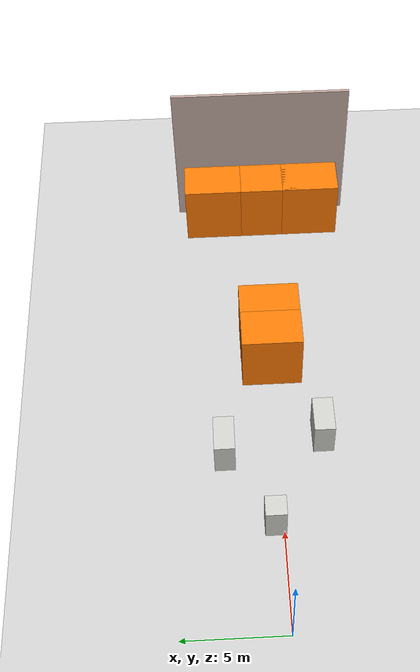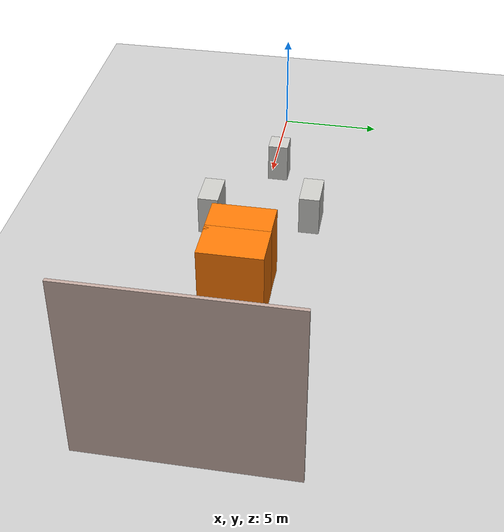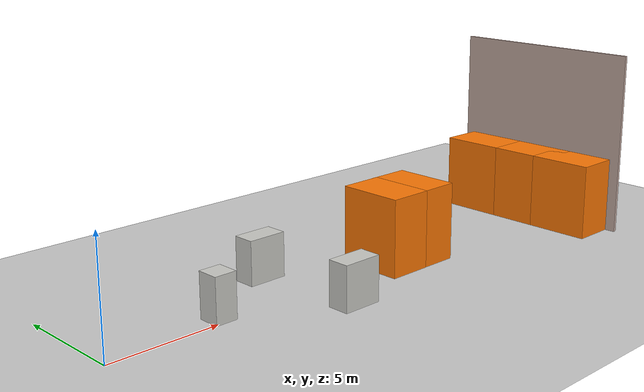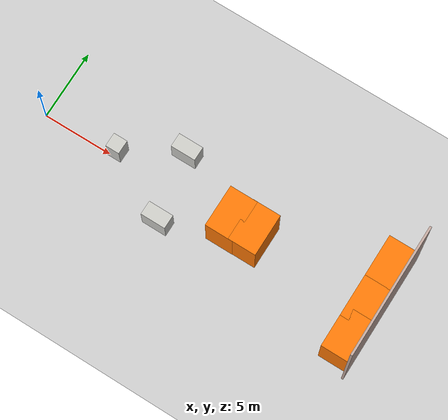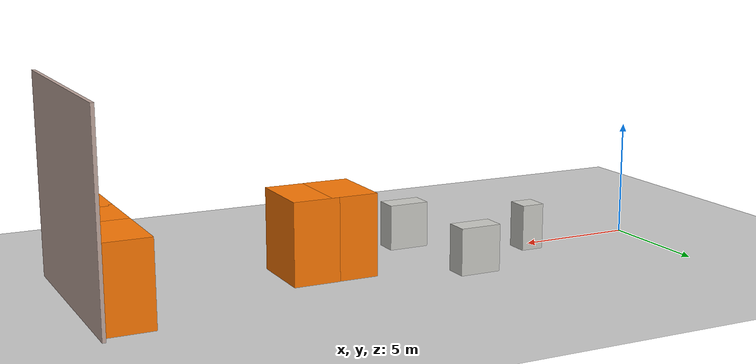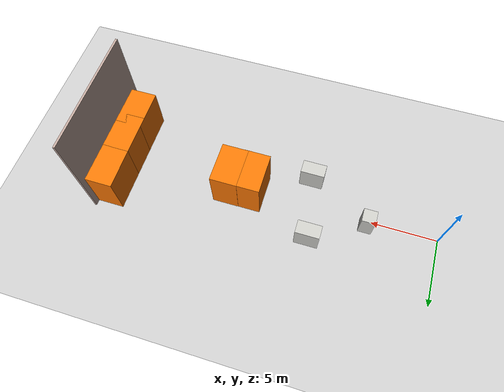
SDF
<sdf version="1.7">
 <world name="default">
  <light name="sun" type="directional">
   <pose>0 0 10 0 -0 0</pose>
   <diffuse>0.8 0.8 0.8 1</diffuse>
   <specular>0.2 0.2 0.2 1</specular>
   <attenuation>
    <range>1000</range>
    <constant>0.9</constant>
    <linear>0.01</linear>
    <quadratic>0.001</quadratic>
   </attenuation>
   <direction>-0.5 0.1 -0.9</direction>
   <spot><inner_angle>0</inner_angle><outer_angle>0</outer_angle><falloff>0</falloff></spot>
  </light>
  <model name="ground_plane">
   <static>1</static>
   <link name="link">
    <collision name="collision">
     <geometry><plane><normal>0 0 1</normal><size>100 100</size></plane></geometry>
     <surface>
      <contact><collide_bitmask>65535</collide_bitmask></contact>
      <friction><ode><mu>100</mu><mu2>50</mu2></ode></friction>
     </surface>
    </collision>
    <visual name="visual">
     <cast_shadows>0</cast_shadows>
     <geometry><plane><normal>0 0 1</normal><size>100 100</size></plane></geometry>
     <material>
      <script><uri>file://media/materials/scripts/gazebo.material</uri><name>Gazebo/Grey</name></script>
     </material>
    </visual>
   </link>
  </model>
  <gravity>0 0 -9.8</gravity>
  <magnetic_field>6e-06 2.3e-05 -4.2e-05</magnetic_field>
  <atmosphere type="adiabatic"/>
  <physics type="ode">
   <max_step_size>0.001</max_step_size>
   <real_time_factor>1</real_time_factor>
   <real_time_update_rate>1000</real_time_update_rate>
  </physics>
  <scene><ambient>0.4 0.4 0.4 1</ambient><background>0.7 0.7 0.7 1</background><shadows>1</shadows></scene>
  <spherical_coordinates>
   <surface_model>EARTH_WGS84</surface_model>
   <latitude_deg>0</latitude_deg>
   <longitude_deg>0</longitude_deg>
   <elevation>0</elevation>
   <heading_deg>0</heading_deg>
  </spherical_coordinates>
  <model name="tunnel_wall">
   <pose>18 0 0 0 -0 0</pose>
   <link name="Wall_0">
    <collision name="Wall_0_Collision">
     <geometry><box><size>9.15 0.15 8.5</size></box></geometry>
     <pose>0 0 4.25 0 -0 0</pose>
    </collision>
    <visual name="Wall_0_Visual">
     <pose>0 0 4.25 0 -0 0</pose>
     <geometry><box><size>9.15 0.15 8.5</size></box></geometry>
     <material>
      <script><uri>file://media/materials/scripts/gazebo.material</uri><name>Gazebo/Grey</name></script>
      <ambient>0.760784 0.662745 0.627451 1</ambient>
     </material>
     <meta><layer>0</layer></meta>
    </visual>
    <pose>7.4625 0 0 0 -0 1.5708</pose>
   </link>
   <static>1</static>
  </model>
  <model name="box3_2_3.5">
   <pose>24.4 2.63486 0 0 -0 0</pose>
   <link name="Wall_7">
    <collision name="Wall_7_Collision">
     <geometry><box><size>3 2 3.5</size></box></geometry>
     <pose>0 0 1.75 0 -0 0</pose>
    </collision>
    <visual name="Wall_7_Visual">
     <pose>0 0 1.75 0 -0 0</pose>
     <geometry><box><size>3 2 3.5</size></box></geometry>
     <material>
      <script><uri>file://media/materials/scripts/gazebo.material</uri><name>Gazebo/Grey</name></script>
      <ambient>0.996078 0.47451 0.0196078 1</ambient>
     </material>
     <meta><layer>0</layer></meta>
    </visual>
    <pose>0 0 0 0 -0 1.5708</pose>
   </link>
   <static>1</static>
  </model>
  <model name="box3_2_3.5_clone">
   <pose>24.4 -0.347109 0 0 -0 0</pose>
   <link name="Wall_7">
    <collision name="Wall_7_Collision">
     <geometry><box><size>3 2 3.5</size></box></geometry>
     <pose>0 0 1.75 0 -0 0</pose>
    </collision>
    <visual name="Wall_7_Visual">
     <pose>0 0 1.75 0 -0 0</pose>
     <geometry><box><size>3 2 3.5</size></box></geometry>
     <material>
      <script><uri>file://media/materials/scripts/gazebo.material</uri><name>Gazebo/Grey</name></script>
      <ambient>0.996078 0.47451 0.0196078 1</ambient>
     </material>
     <meta><layer>0</layer></meta>
    </visual>
    <pose>0 0 0 0 -0 1.5708</pose>
   </link>
   <static>1</static>
  </model>
  <model name="box3_2_3.5_clone_0">
   <pose>24.4 -2.59946 0 0 -0 0</pose>
   <link name="Wall_7">
    <collision name="Wall_7_Collision">
     <geometry><box><size>3 2 3.5</size></box></geometry>
     <pose>0 0 1.75 0 -0 0</pose>
    </collision>
    <visual name="Wall_7_Visual">
     <pose>0 0 1.75 0 -0 0</pose>
     <geometry><box><size>3 2 3.5</size></box></geometry>
     <material>
      <script><uri>file://media/materials/scripts/gazebo.material</uri><name>Gazebo/Grey</name></script>
      <ambient>0.996078 0.47451 0.0196078 1</ambient>
     </material>
     <meta><layer>0</layer></meta>
    </visual>
    <pose>0 0 0 0 -0 1.5708</pose>
   </link>
   <static>1</static>
  </model>
  <model name="box3_2_3.5_0">
   <pose>14.3049 0.064414 0 0 -0 0</pose>
   <link name="Wall_7">
    <collision name="Wall_7_Collision">
     <geometry><box><size>3 2 3.5</size></box></geometry>
     <pose>0 0 1.75 0 -0 0</pose>
    </collision>
    <visual name="Wall_7_Visual">
     <pose>0 0 1.75 0 -0 0</pose>
     <geometry><box><size>3 2 3.5</size></box></geometry>
     <material>
      <script><uri>file://media/materials/scripts/gazebo.material</uri><name>Gazebo/Grey</name></script>
      <ambient>0.996078 0.47451 0.0196078 1</ambient>
     </material>
     <meta><layer>0</layer></meta>
    </visual>
    <pose>0 0 0 0 -0 1.5708</pose>
   </link>
   <static>1</static>
  </model>
  <model name="box_1_1_2">
   <pose>6.21429 1.84899 0 0 -0 0</pose>
   <link name="Wall_0">
    <collision name="Wall_0_Collision">
     <geometry><box><size>1.01 1 2</size></box></geometry>
     <pose>0 0 1 0 -0 0</pose>
    </collision>
    <visual name="Wall_0_Visual">
     <pose>0 0 1 0 -0 0</pose>
     <geometry><box><size>1.01 1 2</size></box></geometry>
     <material>
      <script><uri>file://media/materials/scripts/gazebo.material</uri><name>Gazebo/CeilingTiled</name></script>
      <ambient>0.921569 0.807843 0.615686 1</ambient>
     </material>
     <meta><layer>0</layer></meta>
    </visual>
    <pose>-0.85 -1.44 0 0 -0 0</pose>
   </link>
   <static>1</static>
  </model>
  <model name="box_1.8_1_2">
   <pose>10.5871 -0.74668 0 0 -0 0</pose>
   <link name="Wall_0">
    <collision name="Wall_0_Collision">
     <geometry><box><size>1.8 1 2</size></box></geometry>
     <pose>0 0 1 0 -0 0</pose>
    </collision>
    <visual name="Wall_0_Visual">
     <pose>0 0 1 0 -0 0</pose>
     <geometry><box><size>1.8 1 2</size></box></geometry>
     <material>
      <script><uri>file://media/materials/scripts/gazebo.material</uri><name>Gazebo/CeilingTiled</name></script>
      <ambient>0.921569 0.807843 0.615686 1</ambient>
     </material>
     <meta><layer>0</layer></meta>
    </visual>
    <pose>-0.455 -1.44 0 0 -0 0</pose>
   </link>
   <static>1</static>
  </model>
  <model name="box_1.8_1_2_0">
   <pose>9.77707 4.06806 0 0 -0 0</pose>
   <link name="Wall_0">
    <collision name="Wall_0_Collision">
     <geometry><box><size>1.8 1 2</size></box></geometry>
     <pose>0 0 1 0 -0 0</pose>
    </collision>
    <visual name="Wall_0_Visual">
     <pose>0 0 1 0 -0 0</pose>
     <geometry><box><size>1.8 1 2</size></box></geometry>
     <material>
      <script><uri>file://media/materials/scripts/gazebo.material</uri><name>Gazebo/CeilingTiled</name></script>
      <ambient>0.921569 0.807843 0.615686 1</ambient>
     </material>
     <meta><layer>0</layer></meta>
    </visual>
    <pose>-0.455 -1.44 0 0 -0 0</pose>
   </link>
   <static>1</static>
  </model>
  <model name="box3_2_3.5_1">
   <pose>15.9816 0.077968 0 0 -0 0</pose>
   <link name="Wall_7">
    <collision name="Wall_7_Collision">
     <geometry><box><size>3 2 3.5</size></box></geometry>
     <pose>0 0 1.75 0 -0 0</pose>
    </collision>
    <visual name="Wall_7_Visual">
     <pose>0 0 1.75 0 -0 0</pose>
     <geometry><box><size>3 2 3.5</size></box></geometry>
     <material>
      <script><uri>file://media/materials/scripts/gazebo.material</uri><name>Gazebo/Grey</name></script>
      <ambient>0.996078 0.47451 0.0196078 1</ambient>
     </material>
     <meta><layer>0</layer></meta>
    </visual>
    <pose>0 0 0 0 -0 1.5708</pose>
   </link>
   <static>1</static>
  </model>
 </world>
</sdf>
